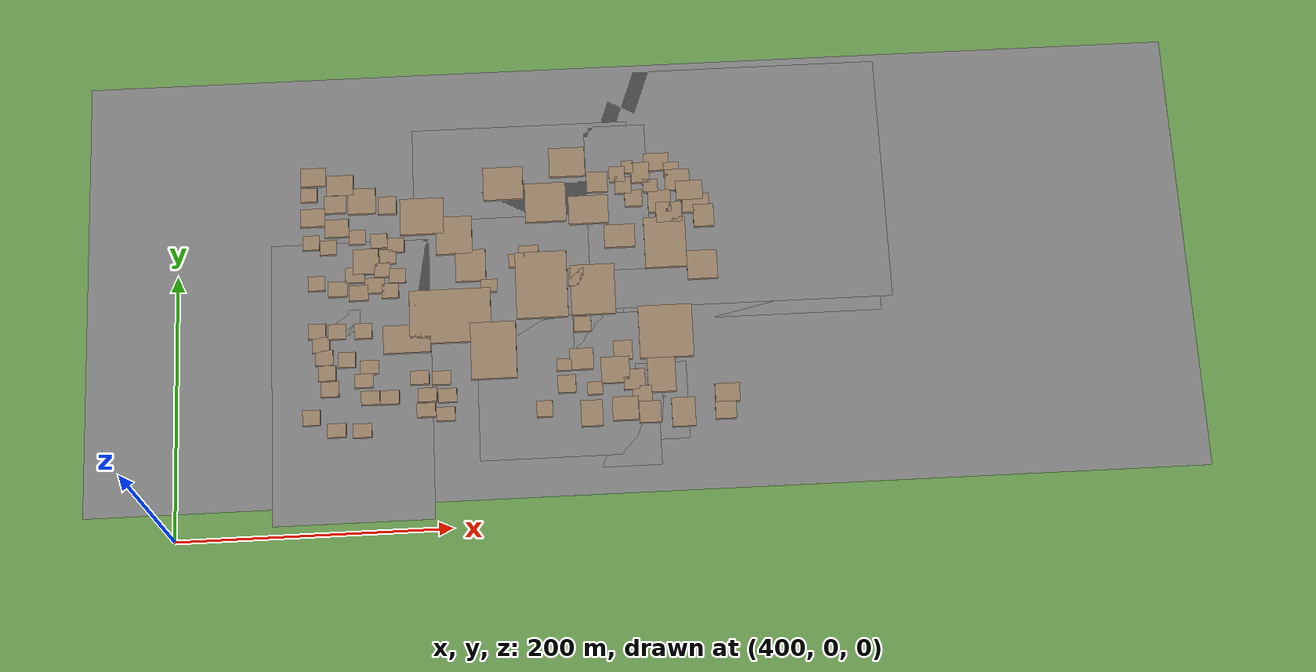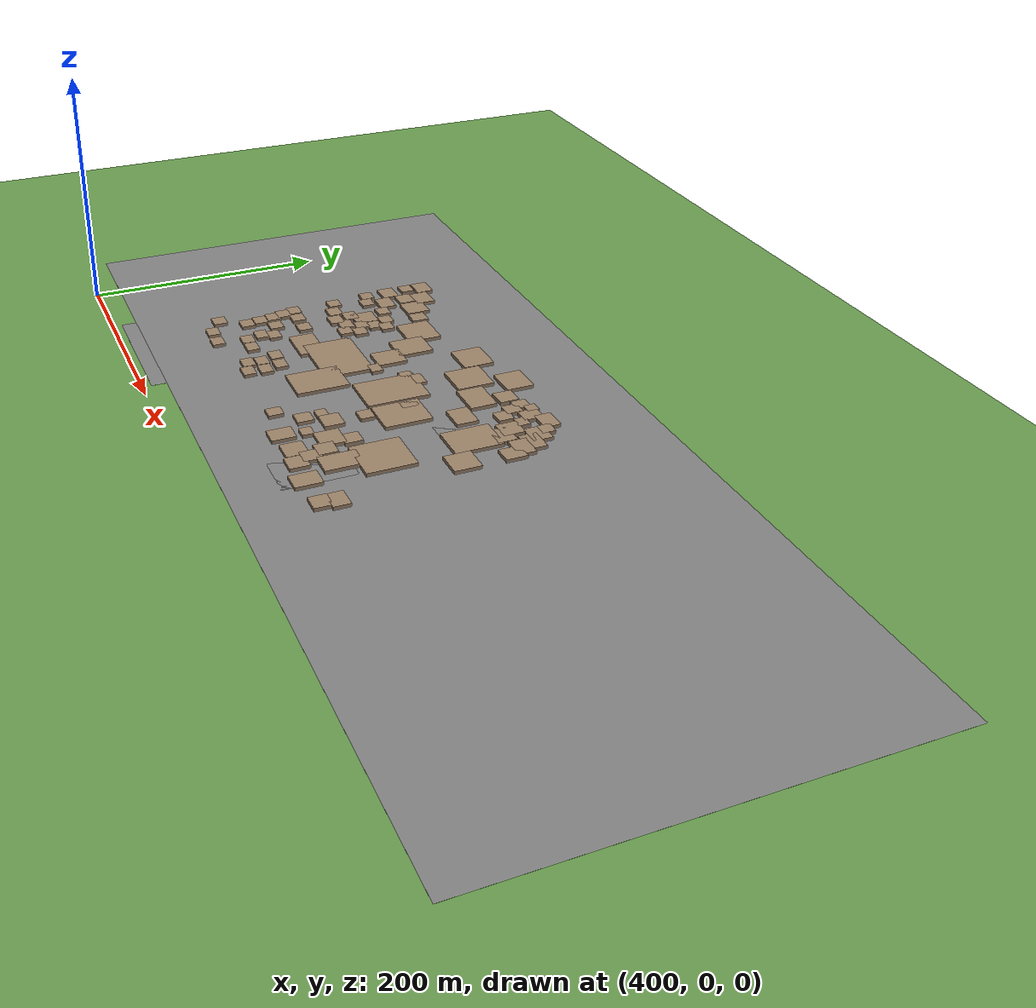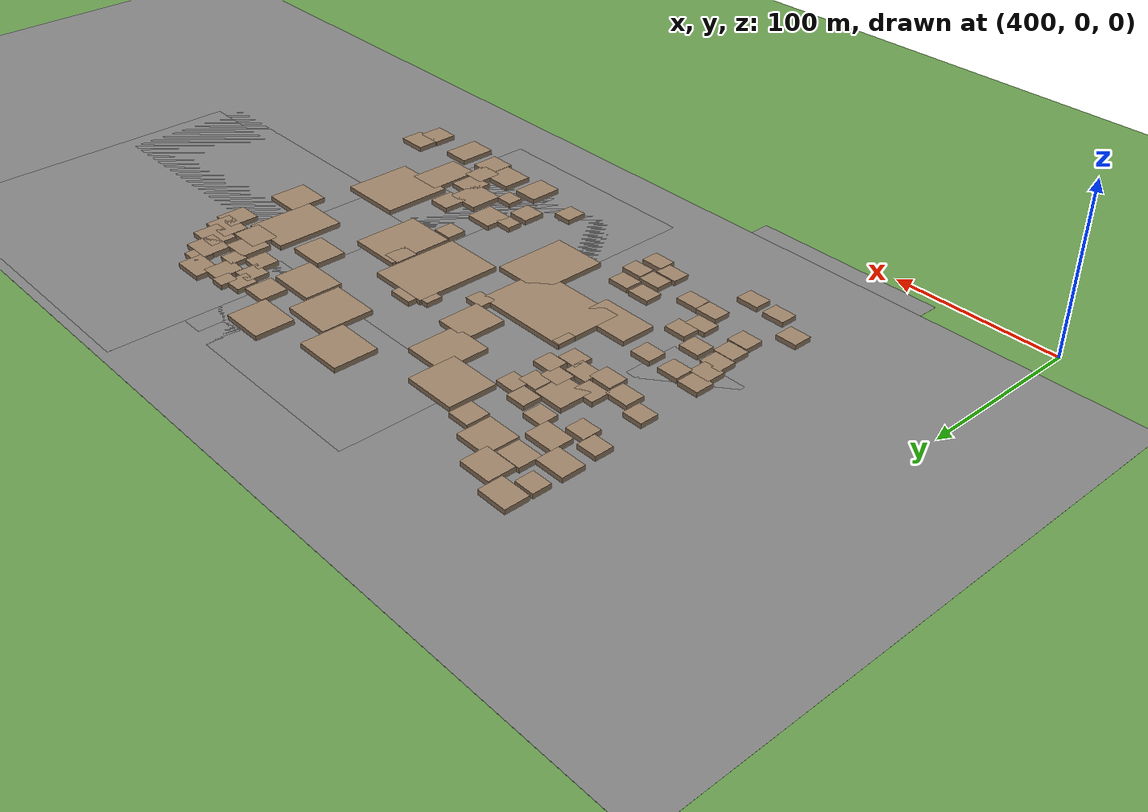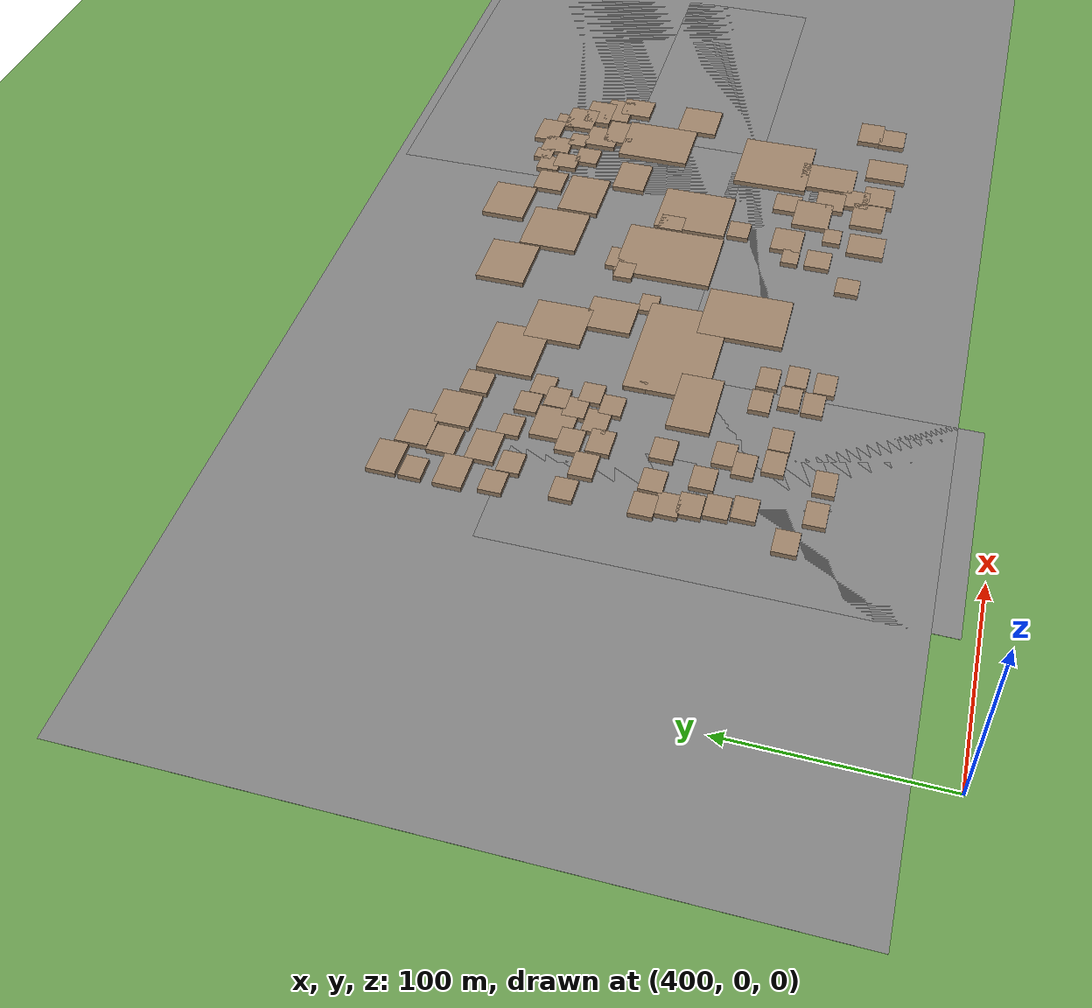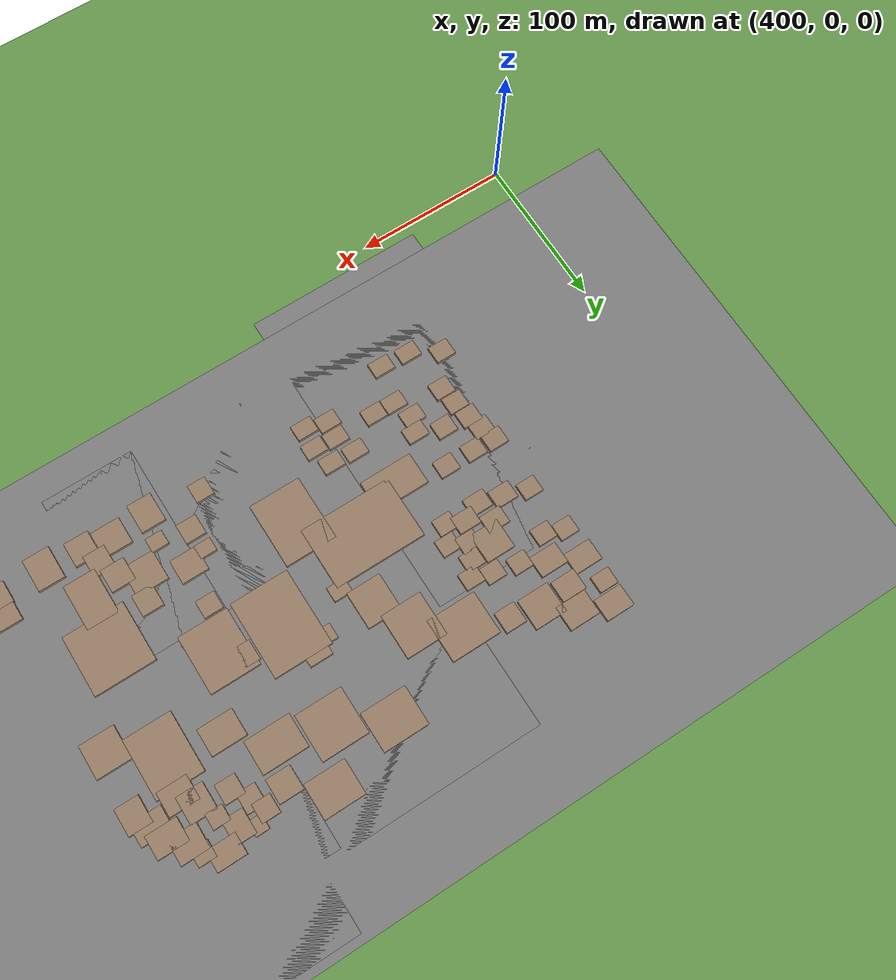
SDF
<sdf version="1.9">
 <world name="kimje_farmland">
  <model name="ground_plane">
   <static>true</static>
   <link name="link">
    <collision name="collision">
     <geometry><plane><normal>0 0 1</normal><size>2000 2000</size></plane></geometry>
    </collision>
    <visual name="visual">
     <geometry><plane><normal>0 0 1</normal><size>2000 2000</size></plane></geometry>
     <material><ambient>0.4 0.6 0.3 1</ambient><diffuse>0.4 0.6 0.3 1</diffuse></material>
    </visual>
   </link>
  </model>
  <model name="osm_21">
   <static>true</static>
   <pose>845.04 188.35 0.040 0 0 0</pose>
   <link name="link">
    <collision name="collision"><geometry><box><size>151.77 76.82 0.080</size></box></geometry></collision>
    <visual name="visual">
     <geometry><box><size>151.77 76.82 0.080</size></box></geometry>
     <material><ambient>0.5 0.5 0.5 1</ambient><diffuse>0.5 0.5 0.5 1</diffuse></material>
    </visual>
   </link>
  </model>
  <model name="osm_22">
   <static>true</static>
   <pose>657.44 272.59 0.040 0 0 0</pose>
   <link name="link">
    <collision name="collision"><geometry><box><size>162.70 73.04 0.080</size></box></geometry></collision>
    <visual name="visual">
     <geometry><box><size>162.70 73.04 0.080</size></box></geometry>
     <material><ambient>0.5 0.5 0.5 1</ambient><diffuse>0.5 0.5 0.5 1</diffuse></material>
    </visual>
   </link>
  </model>
  <model name="osm_28">
   <static>true</static>
   <pose>825.12 254.89 0.040 0 0 0</pose>
   <link name="link">
    <collision name="collision"><geometry><box><size>210.04 188.95 0.080</size></box></geometry></collision>
    <visual name="visual">
     <geometry><box><size>210.04 188.95 0.080</size></box></geometry>
     <material><ambient>0.5 0.5 0.5 1</ambient><diffuse>0.5 0.5 0.5 1</diffuse></material>
    </visual>
   </link>
  </model>
  <model name="osm_29">
   <static>true</static>
   <pose>755.11 88.00 0.040 0 0 0</pose>
   <link name="link">
    <collision name="collision"><geometry><box><size>37.70 58.23 0.080</size></box></geometry></collision>
    <visual name="visual">
     <geometry><box><size>37.70 58.23 0.080</size></box></geometry>
     <material><ambient>0.5 0.5 0.5 1</ambient><diffuse>0.5 0.5 0.5 1</diffuse></material>
    </visual>
   </link>
  </model>
  <model name="osm_33">
   <static>true</static>
   <pose>722.31 101.72 0.040 0 0 0</pose>
   <link name="link">
    <collision name="collision"><geometry><box><size>60.43 123.33 0.080</size></box></geometry></collision>
    <visual name="visual">
     <geometry><box><size>60.43 123.33 0.080</size></box></geometry>
     <material><ambient>0.5 0.5 0.5 1</ambient><diffuse>0.5 0.5 0.5 1</diffuse></material>
    </visual>
   </link>
  </model>
  <model name="osm_34">
   <static>true</static>
   <pose>688.09 103.04 0.040 0 0 0</pose>
   <link name="link">
    <collision name="collision"><geometry><box><size>135.03 108.14 0.080</size></box></geometry></collision>
    <visual name="visual">
     <geometry><box><size>135.03 108.14 0.080</size></box></geometry>
     <material><ambient>0.5 0.5 0.5 1</ambient><diffuse>0.5 0.5 0.5 1</diffuse></material>
    </visual>
   </link>
  </model>
  <model name="osm_35">
   <static>true</static>
   <pose>528.19 114.59 0.040 0 0 0</pose>
   <link name="link">
    <collision name="collision"><geometry><box><size>117.77 214.03 0.080</size></box></geometry></collision>
    <visual name="visual">
     <geometry><box><size>117.77 214.03 0.080</size></box></geometry>
     <material><ambient>0.5 0.5 0.5 1</ambient><diffuse>0.5 0.5 0.5 1</diffuse></material>
    </visual>
   </link>
  </model>
  <model name="osm_39">
   <static>true</static>
   <pose>510.89 151.69 0.040 0 0 0</pose>
   <link name="link">
    <collision name="collision"><geometry><box><size>47.58 33.84 0.080</size></box></geometry></collision>
    <visual name="visual">
     <geometry><box><size>47.58 33.84 0.080</size></box></geometry>
     <material><ambient>0.5 0.5 0.5 1</ambient><diffuse>0.5 0.5 0.5 1</diffuse></material>
    </visual>
   </link>
  </model>
  <model name="osm_94">
   <static>true</static>
   <pose>742.05 187.37 0.040 0 0 0</pose>
   <link name="link">
    <collision name="collision"><geometry><box><size>818.71 334.66 0.080</size></box></geometry></collision>
    <visual name="visual">
     <geometry><box><size>818.71 334.66 0.080</size></box></geometry>
     <material><ambient>0.5 0.5 0.5 1</ambient><diffuse>0.5 0.5 0.5 1</diffuse></material>
    </visual>
   </link>
  </model>
  <model name="osm_111">
   <static>true</static>
   <pose>729.28 248.20 0.040 0 0 0</pose>
   <link name="link">
    <collision name="collision"><geometry><box><size>46.05 115.32 0.080</size></box></geometry></collision>
    <visual name="visual">
     <geometry><box><size>46.05 115.32 0.080</size></box></geometry>
     <material><ambient>0.5 0.5 0.5 1</ambient><diffuse>0.5 0.5 0.5 1</diffuse></material>
    </visual>
   </link>
  </model>
  <model name="osm_1144">
   <static>true</static>
   <pose>501.09 274.22 1.500 0 0 0</pose>
   <link name="link">
    <collision name="collision"><geometry><box><size>18.59 14.35 3.000</size></box></geometry></collision>
    <visual name="visual">
     <geometry><box><size>18.59 14.35 3.000</size></box></geometry>
     <material><ambient>0.6 0.5 0.4 1</ambient><diffuse>0.6 0.5 0.4 1</diffuse></material>
    </visual>
   </link>
  </model>
  <model name="osm_1146">
   <static>true</static>
   <pose>497.92 260.11 1.500 0 0 0</pose>
   <link name="link">
    <collision name="collision"><geometry><box><size>12.29 10.95 3.000</size></box></geometry></collision>
    <visual name="visual">
     <geometry><box><size>12.29 10.95 3.000</size></box></geometry>
     <material><ambient>0.6 0.5 0.4 1</ambient><diffuse>0.6 0.5 0.4 1</diffuse></material>
    </visual>
   </link>
  </model>
  <model name="osm_1147">
   <static>true</static>
   <pose>521.26 266.69 1.500 0 0 0</pose>
   <link name="link">
    <collision name="collision"><geometry><box><size>20.10 15.99 3.000</size></box></geometry></collision>
    <visual name="visual">
     <geometry><box><size>20.10 15.99 3.000</size></box></geometry>
     <material><ambient>0.6 0.5 0.4 1</ambient><diffuse>0.6 0.5 0.4 1</diffuse></material>
    </visual>
   </link>
  </model>
  <model name="osm_1148">
   <static>true</static>
   <pose>517.43 251.61 1.500 0 0 0</pose>
   <link name="link">
    <collision name="collision"><geometry><box><size>16.06 13.67 3.000</size></box></geometry></collision>
    <visual name="visual">
     <geometry><box><size>16.06 13.67 3.000</size></box></geometry>
     <material><ambient>0.6 0.5 0.4 1</ambient><diffuse>0.6 0.5 0.4 1</diffuse></material>
    </visual>
   </link>
  </model>
  <model name="osm_1149">
   <static>true</static>
   <pose>537.35 253.39 1.500 0 0 0</pose>
   <link name="link">
    <collision name="collision"><geometry><box><size>20.86 20.08 3.000</size></box></geometry></collision>
    <visual name="visual">
     <geometry><box><size>20.86 20.08 3.000</size></box></geometry>
     <material><ambient>0.6 0.5 0.4 1</ambient><diffuse>0.6 0.5 0.4 1</diffuse></material>
    </visual>
   </link>
  </model>
  <model name="osm_1151">
   <static>true</static>
   <pose>556.51 249.13 1.500 0 0 0</pose>
   <link name="link">
    <collision name="collision"><geometry><box><size>13.67 13.69 3.000</size></box></geometry></collision>
    <visual name="visual">
     <geometry><box><size>13.67 13.69 3.000</size></box></geometry>
     <material><ambient>0.6 0.5 0.4 1</ambient><diffuse>0.6 0.5 0.4 1</diffuse></material>
    </visual>
   </link>
  </model>
  <model name="osm_1156">
   <static>true</static>
   <pose>790.09 190.89 1.500 0 0 0</pose>
   <link name="link">
    <collision name="collision"><geometry><box><size>22.40 22.16 3.000</size></box></geometry></collision>
    <visual name="visual">
     <geometry><box><size>22.40 22.16 3.000</size></box></geometry>
     <material><ambient>0.6 0.5 0.4 1</ambient><diffuse>0.6 0.5 0.4 1</diffuse></material>
    </visual>
   </link>
  </model>
  <model name="osm_1194">
   <static>true</static>
   <pose>556.09 99.58 1.500 0 0 0</pose>
   <link name="link">
    <collision name="collision"><geometry><box><size>13.76 10.42 3.000</size></box></geometry></collision>
    <visual name="visual">
     <geometry><box><size>13.76 10.42 3.000</size></box></geometry>
     <material><ambient>0.6 0.5 0.4 1</ambient><diffuse>0.6 0.5 0.4 1</diffuse></material>
    </visual>
   </link>
  </model>
  <model name="osm_1195">
   <static>true</static>
   <pose>541.84 99.84 1.500 0 0 0</pose>
   <link name="link">
    <collision name="collision"><geometry><box><size>13.76 10.42 3.000</size></box></geometry></collision>
    <visual name="visual">
     <geometry><box><size>13.76 10.42 3.000</size></box></geometry>
     <material><ambient>0.6 0.5 0.4 1</ambient><diffuse>0.6 0.5 0.4 1</diffuse></material>
    </visual>
   </link>
  </model>
  <model name="osm_1196">
   <static>true</static>
   <pose>582.31 88.64 1.500 0 0 0</pose>
   <link name="link">
    <collision name="collision"><geometry><box><size>13.76 10.42 3.000</size></box></geometry></collision>
    <visual name="visual">
     <geometry><box><size>13.76 10.42 3.000</size></box></geometry>
     <material><ambient>0.6 0.5 0.4 1</ambient><diffuse>0.6 0.5 0.4 1</diffuse></material>
    </visual>
   </link>
  </model>
  <model name="osm_1198">
   <static>true</static>
   <pose>535.48 75.40 1.500 0 0 0</pose>
   <link name="link">
    <collision name="collision"><geometry><box><size>13.76 10.42 3.000</size></box></geometry></collision>
    <visual name="visual">
     <geometry><box><size>13.76 10.42 3.000</size></box></geometry>
     <material><ambient>0.6 0.5 0.4 1</ambient><diffuse>0.6 0.5 0.4 1</diffuse></material>
    </visual>
   </link>
  </model>
  <model name="osm_1199">
   <static>true</static>
   <pose>516.90 76.42 1.500 0 0 0</pose>
   <link name="link">
    <collision name="collision"><geometry><box><size>13.76 10.42 3.000</size></box></geometry></collision>
    <visual name="visual">
     <geometry><box><size>13.76 10.42 3.000</size></box></geometry>
     <material><ambient>0.6 0.5 0.4 1</ambient><diffuse>0.6 0.5 0.4 1</diffuse></material>
    </visual>
   </link>
  </model>
  <model name="osm_1205">
   <static>true</static>
   <pose>596.57 85.08 1.500 0 0 0</pose>
   <link name="link">
    <collision name="collision"><geometry><box><size>13.75 10.42 3.000</size></box></geometry></collision>
    <visual name="visual">
     <geometry><box><size>13.75 10.42 3.000</size></box></geometry>
     <material><ambient>0.6 0.5 0.4 1</ambient><diffuse>0.6 0.5 0.4 1</diffuse></material>
    </visual>
   </link>
  </model>
  <model name="osm_1206">
   <static>true</static>
   <pose>583.58 100.09 1.500 0 0 0</pose>
   <link name="link">
    <collision name="collision"><geometry><box><size>13.75 10.42 3.000</size></box></geometry></collision>
    <visual name="visual">
     <geometry><box><size>13.75 10.42 3.000</size></box></geometry>
     <material><ambient>0.6 0.5 0.4 1</ambient><diffuse>0.6 0.5 0.4 1</diffuse></material>
    </visual>
   </link>
  </model>
  <model name="osm_1207">
   <static>true</static>
   <pose>594.02 112.56 1.500 0 0 0</pose>
   <link name="link">
    <collision name="collision"><geometry><box><size>13.75 10.42 3.000</size></box></geometry></collision>
    <visual name="visual">
     <geometry><box><size>13.75 10.42 3.000</size></box></geometry>
     <material><ambient>0.6 0.5 0.4 1</ambient><diffuse>0.6 0.5 0.4 1</diffuse></material>
    </visual>
   </link>
  </model>
  <model name="osm_1208">
   <static>true</static>
   <pose>598.09 99.07 1.500 0 0 0</pose>
   <link name="link">
    <collision name="collision"><geometry><box><size>13.75 10.42 3.000</size></box></geometry></collision>
    <visual name="visual">
     <geometry><box><size>13.75 10.42 3.000</size></box></geometry>
     <material><ambient>0.6 0.5 0.4 1</ambient><diffuse>0.6 0.5 0.4 1</diffuse></material>
    </visual>
   </link>
  </model>
  <model name="osm_1209">
   <static>true</static>
   <pose>537.00 113.07 1.500 0 0 0</pose>
   <link name="link">
    <collision name="collision"><geometry><box><size>13.76 10.42 3.000</size></box></geometry></collision>
    <visual name="visual">
     <geometry><box><size>13.76 10.42 3.000</size></box></geometry>
     <material><ambient>0.6 0.5 0.4 1</ambient><diffuse>0.6 0.5 0.4 1</diffuse></material>
    </visual>
   </link>
  </model>
  <model name="osm_1222">
   <static>true</static>
   <pose>541.25 123.23 1.500 0 0 0</pose>
   <link name="link">
    <collision name="collision"><geometry><box><size>13.75 10.42 3.000</size></box></geometry></collision>
    <visual name="visual">
     <geometry><box><size>13.75 10.42 3.000</size></box></geometry>
     <material><ambient>0.6 0.5 0.4 1</ambient><diffuse>0.6 0.5 0.4 1</diffuse></material>
    </visual>
   </link>
  </model>
  <model name="osm_1223">
   <static>true</static>
   <pose>569.18 143.60 1.500 0 0 0</pose>
   <link name="link">
    <collision name="collision"><geometry><box><size>34.82 21.22 3.000</size></box></geometry></collision>
    <visual name="visual">
     <geometry><box><size>34.82 21.22 3.000</size></box></geometry>
     <material><ambient>0.6 0.5 0.4 1</ambient><diffuse>0.6 0.5 0.4 1</diffuse></material>
    </visual>
   </link>
  </model>
  <model name="osm_1224">
   <static>true</static>
   <pose>578.15 113.51 1.500 0 0 0</pose>
   <link name="link">
    <collision name="collision"><geometry><box><size>13.76 10.42 3.000</size></box></geometry></collision>
    <visual name="visual">
     <geometry><box><size>13.76 10.42 3.000</size></box></geometry>
     <material><ambient>0.6 0.5 0.4 1</ambient><diffuse>0.6 0.5 0.4 1</diffuse></material>
    </visual>
   </link>
  </model>
  <model name="osm_1225">
   <static>true</static>
   <pose>498.47 86.73 1.500 0 0 0</pose>
   <link name="link">
    <collision name="collision"><geometry><box><size>13.01 11.50 3.000</size></box></geometry></collision>
    <visual name="visual">
     <geometry><box><size>13.01 11.50 3.000</size></box></geometry>
     <material><ambient>0.6 0.5 0.4 1</ambient><diffuse>0.6 0.5 0.4 1</diffuse></material>
    </visual>
   </link>
  </model>
  <model name="osm_1231">
   <static>true</static>
   <pose>512.17 107.71 1.500 0 0 0</pose>
   <link name="link">
    <collision name="collision"><geometry><box><size>13.00 11.50 3.000</size></box></geometry></collision>
    <visual name="visual">
     <geometry><box><size>13.00 11.50 3.000</size></box></geometry>
     <material><ambient>0.6 0.5 0.4 1</ambient><diffuse>0.6 0.5 0.4 1</diffuse></material>
    </visual>
   </link>
  </model>
  <model name="osm_1232">
   <static>true</static>
   <pose>510.19 119.94 1.500 0 0 0</pose>
   <link name="link">
    <collision name="collision"><geometry><box><size>13.01 11.50 3.000</size></box></geometry></collision>
    <visual name="visual">
     <geometry><box><size>13.01 11.50 3.000</size></box></geometry>
     <material><ambient>0.6 0.5 0.4 1</ambient><diffuse>0.6 0.5 0.4 1</diffuse></material>
    </visual>
   </link>
  </model>
  <model name="osm_1233">
   <static>true</static>
   <pose>524.77 129.66 1.500 0 0 0</pose>
   <link name="link">
    <collision name="collision"><geometry><box><size>13.01 11.50 3.000</size></box></geometry></collision>
    <visual name="visual">
     <geometry><box><size>13.01 11.50 3.000</size></box></geometry>
     <material><ambient>0.6 0.5 0.4 1</ambient><diffuse>0.6 0.5 0.4 1</diffuse></material>
    </visual>
   </link>
  </model>
  <model name="osm_1234">
   <static>true</static>
   <pose>508.21 131.82 1.500 0 0 0</pose>
   <link name="link">
    <collision name="collision"><geometry><box><size>13.01 11.50 3.000</size></box></geometry></collision>
    <visual name="visual">
     <geometry><box><size>13.01 11.50 3.000</size></box></geometry>
     <material><ambient>0.6 0.5 0.4 1</ambient><diffuse>0.6 0.5 0.4 1</diffuse></material>
    </visual>
   </link>
  </model>
  <model name="osm_1235">
   <static>true</static>
   <pose>505.87 141.90 1.500 0 0 0</pose>
   <link name="link">
    <collision name="collision"><geometry><box><size>13.00 11.50 3.000</size></box></geometry></collision>
    <visual name="visual">
     <geometry><box><size>13.00 11.50 3.000</size></box></geometry>
     <material><ambient>0.6 0.5 0.4 1</ambient><diffuse>0.6 0.5 0.4 1</diffuse></material>
    </visual>
   </link>
  </model>
  <model name="osm_1236">
   <static>true</static>
   <pose>503.17 152.52 1.500 0 0 0</pose>
   <link name="link">
    <collision name="collision"><geometry><box><size>13.00 11.50 3.000</size></box></geometry></collision>
    <visual name="visual">
     <geometry><box><size>13.00 11.50 3.000</size></box></geometry>
     <material><ambient>0.6 0.5 0.4 1</ambient><diffuse>0.6 0.5 0.4 1</diffuse></material>
    </visual>
   </link>
  </model>
  <model name="osm_1237">
   <static>true</static>
   <pose>517.75 151.62 1.500 0 0 0</pose>
   <link name="link">
    <collision name="collision"><geometry><box><size>13.00 11.50 3.000</size></box></geometry></collision>
    <visual name="visual">
     <geometry><box><size>13.00 11.50 3.000</size></box></geometry>
     <material><ambient>0.6 0.5 0.4 1</ambient><diffuse>0.6 0.5 0.4 1</diffuse></material>
    </visual>
   </link>
  </model>
  <model name="osm_1245">
   <static>true</static>
   <pose>537.01 151.26 1.500 0 0 0</pose>
   <link name="link">
    <collision name="collision"><geometry><box><size>13.00 11.50 3.000</size></box></geometry></collision>
    <visual name="visual">
     <geometry><box><size>13.00 11.50 3.000</size></box></geometry>
     <material><ambient>0.6 0.5 0.4 1</ambient><diffuse>0.6 0.5 0.4 1</diffuse></material>
    </visual>
   </link>
  </model>
  <model name="osm_1246">
   <static>true</static>
   <pose>518.66 184.68 1.500 0 0 0</pose>
   <link name="link">
    <collision name="collision"><geometry><box><size>14.31 11.72 3.000</size></box></geometry></collision>
    <visual name="visual">
     <geometry><box><size>14.31 11.72 3.000</size></box></geometry>
     <material><ambient>0.6 0.5 0.4 1</ambient><diffuse>0.6 0.5 0.4 1</diffuse></material>
    </visual>
   </link>
  </model>
  <model name="osm_1247">
   <static>true</static>
   <pose>534.18 180.96 1.500 0 0 0</pose>
   <link name="link">
    <collision name="collision"><geometry><box><size>14.32 11.73 3.000</size></box></geometry></collision>
    <visual name="visual">
     <geometry><box><size>14.32 11.73 3.000</size></box></geometry>
     <material><ambient>0.6 0.5 0.4 1</ambient><diffuse>0.6 0.5 0.4 1</diffuse></material>
    </visual>
   </link>
  </model>
  <model name="osm_1248">
   <static>true</static>
   <pose>531.48 195.00 1.500 0 0 0</pose>
   <link name="link">
    <collision name="collision"><geometry><box><size>14.32 11.72 3.000</size></box></geometry></collision>
    <visual name="visual">
     <geometry><box><size>14.32 11.72 3.000</size></box></geometry>
     <material><ambient>0.6 0.5 0.4 1</ambient><diffuse>0.6 0.5 0.4 1</diffuse></material>
    </visual>
   </link>
  </model>
  <model name="osm_1249">
   <static>true</static>
   <pose>546.06 186.18 1.500 0 0 0</pose>
   <link name="link">
    <collision name="collision"><geometry><box><size>14.32 11.73 3.000</size></box></geometry></collision>
    <visual name="visual">
     <geometry><box><size>14.32 11.73 3.000</size></box></geometry>
     <material><ambient>0.6 0.5 0.4 1</ambient><diffuse>0.6 0.5 0.4 1</diffuse></material>
    </visual>
   </link>
  </model>
  <model name="osm_1250">
   <static>true</static>
   <pose>551.95 198.19 1.500 0 0 0</pose>
   <link name="link">
    <collision name="collision"><geometry><box><size>12.39 11.12 3.000</size></box></geometry></collision>
    <visual name="visual">
     <geometry><box><size>12.39 11.12 3.000</size></box></geometry>
     <material><ambient>0.6 0.5 0.4 1</ambient><diffuse>0.6 0.5 0.4 1</diffuse></material>
    </visual>
   </link>
  </model>
  <model name="osm_1251">
   <static>true</static>
   <pose>562.98 193.13 1.500 0 0 0</pose>
   <link name="link">
    <collision name="collision"><geometry><box><size>12.39 11.12 3.000</size></box></geometry></collision>
    <visual name="visual">
     <geometry><box><size>12.39 11.12 3.000</size></box></geometry>
     <material><ambient>0.6 0.5 0.4 1</ambient><diffuse>0.6 0.5 0.4 1</diffuse></material>
    </visual>
   </link>
  </model>
  <model name="osm_1252">
   <static>true</static>
   <pose>557.58 181.62 1.500 0 0 0</pose>
   <link name="link">
    <collision name="collision"><geometry><box><size>12.39 11.13 3.000</size></box></geometry></collision>
    <visual name="visual">
     <geometry><box><size>12.39 11.13 3.000</size></box></geometry>
     <material><ambient>0.6 0.5 0.4 1</ambient><diffuse>0.6 0.5 0.4 1</diffuse></material>
    </visual>
   </link>
  </model>
  <model name="osm_1253">
   <static>true</static>
   <pose>556.14 208.43 1.500 0 0 0</pose>
   <link name="link">
    <collision name="collision"><geometry><box><size>12.38 11.13 3.000</size></box></geometry></collision>
    <visual name="visual">
     <geometry><box><size>12.38 11.13 3.000</size></box></geometry>
     <material><ambient>0.6 0.5 0.4 1</ambient><diffuse>0.6 0.5 0.4 1</diffuse></material>
    </visual>
   </link>
  </model>
  <model name="osm_1254">
   <static>true</static>
   <pose>562.44 217.25 1.500 0 0 0</pose>
   <link name="link">
    <collision name="collision"><geometry><box><size>12.39 11.13 3.000</size></box></geometry></collision>
    <visual name="visual">
     <geometry><box><size>12.39 11.13 3.000</size></box></geometry>
     <material><ambient>0.6 0.5 0.4 1</ambient><diffuse>0.6 0.5 0.4 1</diffuse></material>
    </visual>
   </link>
  </model>
  <model name="osm_1255">
   <static>true</static>
   <pose>511.87 217.61 1.500 0 0 0</pose>
   <link name="link">
    <collision name="collision"><geometry><box><size>12.39 11.12 3.000</size></box></geometry></collision>
    <visual name="visual">
     <geometry><box><size>12.39 11.12 3.000</size></box></geometry>
     <material><ambient>0.6 0.5 0.4 1</ambient><diffuse>0.6 0.5 0.4 1</diffuse></material>
    </visual>
   </link>
  </model>
  <model name="osm_1256">
   <static>true</static>
   <pose>499.09 221.93 1.500 0 0 0</pose>
   <link name="link">
    <collision name="collision"><geometry><box><size>12.39 11.12 3.000</size></box></geometry></collision>
    <visual name="visual">
     <geometry><box><size>12.39 11.12 3.000</size></box></geometry>
     <material><ambient>0.6 0.5 0.4 1</ambient><diffuse>0.6 0.5 0.4 1</diffuse></material>
    </visual>
   </link>
  </model>
  <model name="osm_1257">
   <static>true</static>
   <pose>502.87 189.72 1.500 0 0 0</pose>
   <link name="link">
    <collision name="collision"><geometry><box><size>12.38 11.12 3.000</size></box></geometry></collision>
    <visual name="visual">
     <geometry><box><size>12.38 11.12 3.000</size></box></geometry>
     <material><ambient>0.6 0.5 0.4 1</ambient><diffuse>0.6 0.5 0.4 1</diffuse></material>
    </visual>
   </link>
  </model>
  <model name="osm_1259">
   <static>true</static>
   <pose>533.64 224.81 1.500 0 0 0</pose>
   <link name="link">
    <collision name="collision"><geometry><box><size>12.38 11.13 3.000</size></box></geometry></collision>
    <visual name="visual">
     <geometry><box><size>12.38 11.13 3.000</size></box></geometry>
     <material><ambient>0.6 0.5 0.4 1</ambient><diffuse>0.6 0.5 0.4 1</diffuse></material>
    </visual>
   </link>
  </model>
  <model name="osm_1260">
   <static>true</static>
   <pose>549.84 221.21 1.500 0 0 0</pose>
   <link name="link">
    <collision name="collision"><geometry><box><size>12.38 11.13 3.000</size></box></geometry></collision>
    <visual name="visual">
     <geometry><box><size>12.38 11.13 3.000</size></box></geometry>
     <material><ambient>0.6 0.5 0.4 1</ambient><diffuse>0.6 0.5 0.4 1</diffuse></material>
    </visual>
   </link>
  </model>
  <model name="osm_1261">
   <static>true</static>
   <pose>500.43 241.82 1.500 0 0 0</pose>
   <link name="link">
    <collision name="collision"><geometry><box><size>18.04 13.91 3.000</size></box></geometry></collision>
    <visual name="visual">
     <geometry><box><size>18.04 13.91 3.000</size></box></geometry>
     <material><ambient>0.6 0.5 0.4 1</ambient><diffuse>0.6 0.5 0.4 1</diffuse></material>
    </visual>
   </link>
  </model>
  <model name="osm_1262">
   <static>true</static>
   <pose>518.42 232.65 1.500 0 0 0</pose>
   <link name="link">
    <collision name="collision"><geometry><box><size>18.05 13.90 3.000</size></box></geometry></collision>
    <visual name="visual">
     <geometry><box><size>18.05 13.90 3.000</size></box></geometry>
     <material><ambient>0.6 0.5 0.4 1</ambient><diffuse>0.6 0.5 0.4 1</diffuse></material>
    </visual>
   </link>
  </model>
  <model name="osm_1503">
   <static>true</static>
   <pose>759.92 274.13 1.500 0 0 0</pose>
   <link name="link">
    <collision name="collision"><geometry><box><size>18.86 13.77 3.000</size></box></geometry></collision>
    <visual name="visual">
     <geometry><box><size>18.86 13.77 3.000</size></box></geometry>
     <material><ambient>0.6 0.5 0.4 1</ambient><diffuse>0.6 0.5 0.4 1</diffuse></material>
    </visual>
   </link>
  </model>
  <model name="osm_1504">
   <static>true</static>
   <pose>770.90 267.68 1.500 0 0 0</pose>
   <link name="link">
    <collision name="collision"><geometry><box><size>11.45 11.08 3.000</size></box></geometry></collision>
    <visual name="visual">
     <geometry><box><size>11.45 11.08 3.000</size></box></geometry>
     <material><ambient>0.6 0.5 0.4 1</ambient><diffuse>0.6 0.5 0.4 1</diffuse></material>
    </visual>
   </link>
  </model>
  <model name="osm_1507">
   <static>true</static>
   <pose>729.83 265.65 1.500 0 0 0</pose>
   <link name="link">
    <collision name="collision"><geometry><box><size>11.84 12.32 3.000</size></box></geometry></collision>
    <visual name="visual">
     <geometry><box><size>11.84 12.32 3.000</size></box></geometry>
     <material><ambient>0.6 0.5 0.4 1</ambient><diffuse>0.6 0.5 0.4 1</diffuse></material>
    </visual>
   </link>
  </model>
  <model name="osm_1508">
   <static>true</static>
   <pose>734.08 256.57 1.500 0 0 0</pose>
   <link name="link">
    <collision name="collision"><geometry><box><size>12.28 13.33 3.000</size></box></geometry></collision>
    <visual name="visual">
     <geometry><box><size>12.28 13.33 3.000</size></box></geometry>
     <material><ambient>0.6 0.5 0.4 1</ambient><diffuse>0.6 0.5 0.4 1</diffuse></material>
    </visual>
   </link>
  </model>
  <model name="osm_1509">
   <static>true</static>
   <pose>737.80 271.06 1.500 0 0 0</pose>
   <link name="link">
    <collision name="collision"><geometry><box><size>8.76 9.89 3.000</size></box></geometry></collision>
    <visual name="visual">
     <geometry><box><size>8.76 9.89 3.000</size></box></geometry>
     <material><ambient>0.6 0.5 0.4 1</ambient><diffuse>0.6 0.5 0.4 1</diffuse></material>
    </visual>
   </link>
  </model>
  <model name="osm_1510">
   <static>true</static>
   <pose>747.39 266.17 1.500 0 0 0</pose>
   <link name="link">
    <collision name="collision"><geometry><box><size>13.67 16.16 3.000</size></box></geometry></collision>
    <visual name="visual">
     <geometry><box><size>13.67 16.16 3.000</size></box></geometry>
     <material><ambient>0.6 0.5 0.4 1</ambient><diffuse>0.6 0.5 0.4 1</diffuse></material>
    </visual>
   </link>
  </model>
  <model name="osm_1511">
   <static>true</static>
   <pose>754.57 255.31 1.500 0 0 0</pose>
   <link name="link">
    <collision name="collision"><geometry><box><size>11.03 10.00 3.000</size></box></geometry></collision>
    <visual name="visual">
     <geometry><box><size>11.03 10.00 3.000</size></box></geometry>
     <material><ambient>0.6 0.5 0.4 1</ambient><diffuse>0.6 0.5 0.4 1</diffuse></material>
    </visual>
   </link>
  </model>
  <model name="osm_1512">
   <static>true</static>
   <pose>741.43 245.86 1.500 0 0 0</pose>
   <link name="link">
    <collision name="collision"><geometry><box><size>13.06 12.85 3.000</size></box></geometry></collision>
    <visual name="visual">
     <geometry><box><size>13.06 12.85 3.000</size></box></geometry>
     <material><ambient>0.6 0.5 0.4 1</ambient><diffuse>0.6 0.5 0.4 1</diffuse></material>
    </visual>
   </link>
  </model>
  <model name="osm_1513">
   <static>true</static>
   <pose>714.57 260.07 1.500 0 0 0</pose>
   <link name="link">
    <collision name="collision"><geometry><box><size>15.81 15.93 3.000</size></box></geometry></collision>
    <visual name="visual">
     <geometry><box><size>15.81 15.93 3.000</size></box></geometry>
     <material><ambient>0.6 0.5 0.4 1</ambient><diffuse>0.6 0.5 0.4 1</diffuse></material>
    </visual>
   </link>
  </model>
  <model name="osm_1514">
   <static>true</static>
   <pose>692.51 277.19 1.500 0 0 0</pose>
   <link name="link">
    <collision name="collision"><geometry><box><size>26.88 23.00 3.000</size></box></geometry></collision>
    <visual name="visual">
     <geometry><box><size>26.88 23.00 3.000</size></box></geometry>
     <material><ambient>0.6 0.5 0.4 1</ambient><diffuse>0.6 0.5 0.4 1</diffuse></material>
    </visual>
   </link>
  </model>
  <model name="osm_1515">
   <static>true</static>
   <pose>675.20 245.78 1.500 0 0 0</pose>
   <link name="link">
    <collision name="collision"><geometry><box><size>30.76 30.75 3.000</size></box></geometry></collision>
    <visual name="visual">
     <geometry><box><size>30.76 30.75 3.000</size></box></geometry>
     <material><ambient>0.6 0.5 0.4 1</ambient><diffuse>0.6 0.5 0.4 1</diffuse></material>
    </visual>
   </link>
  </model>
  <model name="osm_1516">
   <static>true</static>
   <pose>707.22 238.46 1.500 0 0 0</pose>
   <link name="link">
    <collision name="collision"><geometry><box><size>29.79 22.03 3.000</size></box></geometry></collision>
    <visual name="visual">
     <geometry><box><size>29.79 22.03 3.000</size></box></geometry>
     <material><ambient>0.6 0.5 0.4 1</ambient><diffuse>0.6 0.5 0.4 1</diffuse></material>
    </visual>
   </link>
  </model>
  <model name="osm_1517">
   <static>true</static>
   <pose>643.87 262.34 1.500 0 0 0</pose>
   <link name="link">
    <collision name="collision"><geometry><box><size>29.85 25.84 3.000</size></box></geometry></collision>
    <visual name="visual">
     <geometry><box><size>29.85 25.84 3.000</size></box></geometry>
     <material><ambient>0.6 0.5 0.4 1</ambient><diffuse>0.6 0.5 0.4 1</diffuse></material>
    </visual>
   </link>
  </model>
  <model name="osm_1519">
   <static>true</static>
   <pose>775.14 259.14 1.500 0 0 0</pose>
   <link name="link">
    <collision name="collision"><geometry><box><size>18.41 16.46 3.000</size></box></geometry></collision>
    <visual name="visual">
     <geometry><box><size>18.41 16.46 3.000</size></box></geometry>
     <material><ambient>0.6 0.5 0.4 1</ambient><diffuse>0.6 0.5 0.4 1</diffuse></material>
    </visual>
   </link>
  </model>
  <model name="osm_1520">
   <static>true</static>
   <pose>783.61 250.27 1.500 0 0 0</pose>
   <link name="link">
    <collision name="collision"><geometry><box><size>20.10 15.25 3.000</size></box></geometry></collision>
    <visual name="visual">
     <geometry><box><size>20.10 15.25 3.000</size></box></geometry>
     <material><ambient>0.6 0.5 0.4 1</ambient><diffuse>0.6 0.5 0.4 1</diffuse></material>
    </visual>
   </link>
  </model>
  <model name="osm_1521">
   <static>true</static>
   <pose>787.86 239.79 1.500 0 0 0</pose>
   <link name="link">
    <collision name="collision"><geometry><box><size>20.10 14.77 3.000</size></box></geometry></collision>
    <visual name="visual">
     <geometry><box><size>20.10 14.77 3.000</size></box></geometry>
     <material><ambient>0.6 0.5 0.4 1</ambient><diffuse>0.6 0.5 0.4 1</diffuse></material>
    </visual>
   </link>
  </model>
  <model name="osm_1522">
   <static>true</static>
   <pose>760.77 242.48 1.500 0 0 0</pose>
   <link name="link">
    <collision name="collision"><geometry><box><size>17.13 17.61 3.000</size></box></geometry></collision>
    <visual name="visual">
     <geometry><box><size>17.13 17.61 3.000</size></box></geometry>
     <material><ambient>0.6 0.5 0.4 1</ambient><diffuse>0.6 0.5 0.4 1</diffuse></material>
    </visual>
   </link>
  </model>
  <model name="osm_1547">
   <static>true</static>
   <pose>793.38 229.69 1.500 0 0 0</pose>
   <link name="link">
    <collision name="collision"><geometry><box><size>15.29 17.47 3.000</size></box></geometry></collision>
    <visual name="visual">
     <geometry><box><size>15.29 17.47 3.000</size></box></geometry>
     <material><ambient>0.6 0.5 0.4 1</ambient><diffuse>0.6 0.5 0.4 1</diffuse></material>
    </visual>
   </link>
  </model>
  <model name="osm_1548">
   <static>true</static>
   <pose>707.92 175.37 1.500 0 0 0</pose>
   <link name="link">
    <collision name="collision"><geometry><box><size>32.73 38.85 3.000</size></box></geometry></collision>
    <visual name="visual">
     <geometry><box><size>32.73 38.85 3.000</size></box></geometry>
     <material><ambient>0.6 0.5 0.4 1</ambient><diffuse>0.6 0.5 0.4 1</diffuse></material>
    </visual>
   </link>
  </model>
  <model name="osm_1549">
   <static>true</static>
   <pose>699.14 148.87 1.500 0 0 0</pose>
   <link name="link">
    <collision name="collision"><geometry><box><size>12.54 11.61 3.000</size></box></geometry></collision>
    <visual name="visual">
     <geometry><box><size>12.54 11.61 3.000</size></box></geometry>
     <material><ambient>0.6 0.5 0.4 1</ambient><diffuse>0.6 0.5 0.4 1</diffuse></material>
    </visual>
   </link>
  </model>
  <model name="osm_1550">
   <static>true</static>
   <pose>684.30 118.14 1.500 0 0 0</pose>
   <link name="link">
    <collision name="collision"><geometry><box><size>10.74 9.01 3.000</size></box></geometry></collision>
    <visual name="visual">
     <geometry><box><size>10.74 9.01 3.000</size></box></geometry>
     <material><ambient>0.6 0.5 0.4 1</ambient><diffuse>0.6 0.5 0.4 1</diffuse></material>
    </visual>
   </link>
  </model>
  <model name="osm_1551">
   <static>true</static>
   <pose>697.32 121.97 1.500 0 0 0</pose>
   <link name="link">
    <collision name="collision"><geometry><box><size>17.43 16.16 3.000</size></box></geometry></collision>
    <visual name="visual">
     <geometry><box><size>17.43 16.16 3.000</size></box></geometry>
     <material><ambient>0.6 0.5 0.4 1</ambient><diffuse>0.6 0.5 0.4 1</diffuse></material>
    </visual>
   </link>
  </model>
  <model name="osm_1552">
   <static>true</static>
   <pose>728.03 127.41 1.500 0 0 0</pose>
   <link name="link">
    <collision name="collision"><geometry><box><size>13.86 14.38 3.000</size></box></geometry></collision>
    <visual name="visual">
     <geometry><box><size>13.86 14.38 3.000</size></box></geometry>
     <material><ambient>0.6 0.5 0.4 1</ambient><diffuse>0.6 0.5 0.4 1</diffuse></material>
    </visual>
   </link>
  </model>
  <model name="osm_1553">
   <static>true</static>
   <pose>735.38 104.66 1.500 0 0 0</pose>
   <link name="link">
    <collision name="collision"><geometry><box><size>15.56 15.44 3.000</size></box></geometry></collision>
    <visual name="visual">
     <geometry><box><size>15.56 15.44 3.000</size></box></geometry>
     <material><ambient>0.6 0.5 0.4 1</ambient><diffuse>0.6 0.5 0.4 1</diffuse></material>
    </visual>
   </link>
  </model>
  <model name="osm_1554">
   <static>true</static>
   <pose>740.67 91.71 1.500 0 0 0</pose>
   <link name="link">
    <collision name="collision"><geometry><box><size>14.17 15.08 3.000</size></box></geometry></collision>
    <visual name="visual">
     <geometry><box><size>14.17 15.08 3.000</size></box></geometry>
     <material><ambient>0.6 0.5 0.4 1</ambient><diffuse>0.6 0.5 0.4 1</diffuse></material>
    </visual>
   </link>
  </model>
  <model name="osm_1555">
   <static>true</static>
   <pose>745.69 79.41 1.500 0 0 0</pose>
   <link name="link">
    <collision name="collision"><geometry><box><size>15.89 16.16 3.000</size></box></geometry></collision>
    <visual name="visual">
     <geometry><box><size>15.89 16.16 3.000</size></box></geometry>
     <material><ambient>0.6 0.5 0.4 1</ambient><diffuse>0.6 0.5 0.4 1</diffuse></material>
    </visual>
   </link>
  </model>
  <model name="osm_1557">
   <static>true</static>
   <pose>727.84 82.79 1.500 0 0 0</pose>
   <link name="link">
    <collision name="collision"><geometry><box><size>19.03 17.69 3.000</size></box></geometry></collision>
    <visual name="visual">
     <geometry><box><size>19.03 17.69 3.000</size></box></geometry>
     <material><ambient>0.6 0.5 0.4 1</ambient><diffuse>0.6 0.5 0.4 1</diffuse></material>
    </visual>
   </link>
  </model>
  <model name="osm_1567">
   <static>true</static>
   <pose>770.18 78.15 1.500 0 0 0</pose>
   <link name="link">
    <collision name="collision"><geometry><box><size>17.12 21.72 3.000</size></box></geometry></collision>
    <visual name="visual">
     <geometry><box><size>17.12 21.72 3.000</size></box></geometry>
     <material><ambient>0.6 0.5 0.4 1</ambient><diffuse>0.6 0.5 0.4 1</diffuse></material>
    </visual>
   </link>
  </model>
  <model name="osm_1568">
   <static>true</static>
   <pose>803.02 91.29 1.500 0 0 0</pose>
   <link name="link">
    <collision name="collision"><geometry><box><size>17.99 13.68 3.000</size></box></geometry></collision>
    <visual name="visual">
     <geometry><box><size>17.99 13.68 3.000</size></box></geometry>
     <material><ambient>0.6 0.5 0.4 1</ambient><diffuse>0.6 0.5 0.4 1</diffuse></material>
    </visual>
   </link>
  </model>
  <model name="osm_1569">
   <static>true</static>
   <pose>801.11 78.77 1.500 0 0 0</pose>
   <link name="link">
    <collision name="collision"><geometry><box><size>15.24 14.38 3.000</size></box></geometry></collision>
    <visual name="visual">
     <geometry><box><size>15.24 14.38 3.000</size></box></geometry>
     <material><ambient>0.6 0.5 0.4 1</ambient><diffuse>0.6 0.5 0.4 1</diffuse></material>
    </visual>
   </link>
  </model>
  <model name="osm_1581">
   <static>true</static>
   <pose>632.82 131.92 1.500 0 0 0</pose>
   <link name="link">
    <collision name="collision"><geometry><box><size>33.68 43.48 3.000</size></box></geometry></collision>
    <visual name="visual">
     <geometry><box><size>33.68 43.48 3.000</size></box></geometry>
     <material><ambient>0.6 0.5 0.4 1</ambient><diffuse>0.6 0.5 0.4 1</diffuse></material>
    </visual>
   </link>
  </model>
  <model name="osm_1582">
   <static>true</static>
   <pose>601.55 159.93 1.500 0 0 0</pose>
   <link name="link">
    <collision name="collision"><geometry><box><size>60.23 41.14 3.000</size></box></geometry></collision>
    <visual name="visual">
     <geometry><box><size>60.23 41.14 3.000</size></box></geometry>
     <material><ambient>0.6 0.5 0.4 1</ambient><diffuse>0.6 0.5 0.4 1</diffuse></material>
    </visual>
   </link>
  </model>
  <model name="osm_1615">
   <static>true</static>
   <pose>760.36 140.35 1.500 0 0 0</pose>
   <link name="link">
    <collision name="collision"><geometry><box><size>39.76 40.30 3.000</size></box></geometry></collision>
    <visual name="visual">
     <geometry><box><size>39.76 40.30 3.000</size></box></geometry>
     <material><ambient>0.6 0.5 0.4 1</ambient><diffuse>0.6 0.5 0.4 1</diffuse></material>
    </visual>
   </link>
  </model>
  <model name="osm_1616">
   <static>true</static>
   <pose>755.47 109.20 1.500 0 0 0</pose>
   <link name="link">
    <collision name="collision"><geometry><box><size>20.57 30.32 3.000</size></box></geometry></collision>
    <visual name="visual">
     <geometry><box><size>20.57 30.32 3.000</size></box></geometry>
     <material><ambient>0.6 0.5 0.4 1</ambient><diffuse>0.6 0.5 0.4 1</diffuse></material>
    </visual>
   </link>
  </model>
  <model name="osm_1617">
   <static>true</static>
   <pose>767.46 233.56 1.500 0 0 0</pose>
   <link name="link">
    <collision name="collision"><geometry><box><size>19.34 15.85 3.000</size></box></geometry></collision>
    <visual name="visual">
     <geometry><box><size>19.34 15.85 3.000</size></box></geometry>
     <material><ambient>0.6 0.5 0.4 1</ambient><diffuse>0.6 0.5 0.4 1</diffuse></material>
    </visual>
   </link>
  </model>
  <model name="osm_1618">
   <static>true</static>
   <pose>763.51 209.96 1.500 0 0 0</pose>
   <link name="link">
    <collision name="collision"><geometry><box><size>31.01 39.60 3.000</size></box></geometry></collision>
    <visual name="visual">
     <geometry><box><size>31.01 39.60 3.000</size></box></geometry>
     <material><ambient>0.6 0.5 0.4 1</ambient><diffuse>0.6 0.5 0.4 1</diffuse></material>
    </visual>
   </link>
  </model>
  <model name="osm_1619">
   <static>true</static>
   <pose>729.55 216.44 1.500 0 0 0</pose>
   <link name="link">
    <collision name="collision"><geometry><box><size>22.86 17.74 3.000</size></box></geometry></collision>
    <visual name="visual">
     <geometry><box><size>22.86 17.74 3.000</size></box></geometry>
     <material><ambient>0.6 0.5 0.4 1</ambient><diffuse>0.6 0.5 0.4 1</diffuse></material>
    </visual>
   </link>
  </model>
  <model name="osm_1620">
   <static>true</static>
   <pose>695.84 185.58 1.500 0 0 0</pose>
   <link name="link">
    <collision name="collision"><geometry><box><size>11.31 13.34 3.000</size></box></geometry></collision>
    <visual name="visual">
     <geometry><box><size>11.31 13.34 3.000</size></box></geometry>
     <material><ambient>0.6 0.5 0.4 1</ambient><diffuse>0.6 0.5 0.4 1</diffuse></material>
    </visual>
   </link>
  </model>
  <model name="osm_1621">
   <static>true</static>
   <pose>669.92 180.92 1.500 0 0 0</pose>
   <link name="link">
    <collision name="collision"><geometry><box><size>38.24 51.44 3.000</size></box></geometry></collision>
    <visual name="visual">
     <geometry><box><size>38.24 51.44 3.000</size></box></geometry>
     <material><ambient>0.6 0.5 0.4 1</ambient><diffuse>0.6 0.5 0.4 1</diffuse></material>
    </visual>
   </link>
  </model>
  <model name="osm_1622">
   <static>true</static>
   <pose>661.11 207.50 1.500 0 0 0</pose>
   <link name="link">
    <collision name="collision"><geometry><box><size>14.98 8.87 3.000</size></box></geometry></collision>
    <visual name="visual">
     <geometry><box><size>14.98 8.87 3.000</size></box></geometry>
     <material><ambient>0.6 0.5 0.4 1</ambient><diffuse>0.6 0.5 0.4 1</diffuse></material>
    </visual>
   </link>
  </model>
  <model name="osm_1623">
   <static>true</static>
   <pose>652.21 200.58 1.500 0 0 0</pose>
   <link name="link">
    <collision name="collision"><geometry><box><size>12.06 9.96 3.000</size></box></geometry></collision>
    <visual name="visual">
     <geometry><box><size>12.06 9.96 3.000</size></box></geometry>
     <material><ambient>0.6 0.5 0.4 1</ambient><diffuse>0.6 0.5 0.4 1</diffuse></material>
    </visual>
   </link>
  </model>
  <model name="osm_1624">
   <static>true</static>
   <pose>605.87 222.90 1.500 0 0 0</pose>
   <link name="link">
    <collision name="collision"><geometry><box><size>26.81 29.42 3.000</size></box></geometry></collision>
    <visual name="visual">
     <geometry><box><size>26.81 29.42 3.000</size></box></geometry>
     <material><ambient>0.6 0.5 0.4 1</ambient><diffuse>0.6 0.5 0.4 1</diffuse></material>
    </visual>
   </link>
  </model>
  <model name="osm_1625">
   <static>true</static>
   <pose>617.67 198.48 1.500 0 0 0</pose>
   <link name="link">
    <collision name="collision"><geometry><box><size>22.42 24.61 3.000</size></box></geometry></collision>
    <visual name="visual">
     <geometry><box><size>22.42 24.61 3.000</size></box></geometry>
     <material><ambient>0.6 0.5 0.4 1</ambient><diffuse>0.6 0.5 0.4 1</diffuse></material>
    </visual>
   </link>
  </model>
  <model name="osm_1626">
   <static>true</static>
   <pose>630.96 182.00 1.500 0 0 0</pose>
   <link name="link">
    <collision name="collision"><geometry><box><size>12.22 9.68 3.000</size></box></geometry></collision>
    <visual name="visual">
     <geometry><box><size>12.22 9.68 3.000</size></box></geometry>
     <material><ambient>0.6 0.5 0.4 1</ambient><diffuse>0.6 0.5 0.4 1</diffuse></material>
    </visual>
   </link>
  </model>
  <model name="osm_1635">
   <static>true</static>
   <pose>582.15 239.11 1.500 0 0 0</pose>
   <link name="link">
    <collision name="collision"><geometry><box><size>32.41 28.35 3.000</size></box></geometry></collision>
    <visual name="visual">
     <geometry><box><size>32.41 28.35 3.000</size></box></geometry>
     <material><ambient>0.6 0.5 0.4 1</ambient><diffuse>0.6 0.5 0.4 1</diffuse></material>
    </visual>
   </link>
  </model>
  <model name="osm_1636">
   <static>true</static>
   <pose>573.82 174.35 1.500 0 0 0</pose>
   <link name="link">
    <collision name="collision"><geometry><box><size>5.02 10.99 3.000</size></box></geometry></collision>
    <visual name="visual">
     <geometry><box><size>5.02 10.99 3.000</size></box></geometry>
     <material><ambient>0.6 0.5 0.4 1</ambient><diffuse>0.6 0.5 0.4 1</diffuse></material>
    </visual>
   </link>
  </model>
  <model name="osm_1637">
   <static>true</static>
   <pose>703.15 80.36 1.500 0 0 0</pose>
   <link name="link">
    <collision name="collision"><geometry><box><size>15.92 19.49 3.000</size></box></geometry></collision>
    <visual name="visual">
     <geometry><box><size>15.92 19.49 3.000</size></box></geometry>
     <material><ambient>0.6 0.5 0.4 1</ambient><diffuse>0.6 0.5 0.4 1</diffuse></material>
    </visual>
   </link>
  </model>
  <model name="osm_1638">
   <static>true</static>
   <pose>721.72 112.46 1.500 0 0 0</pose>
   <link name="link">
    <collision name="collision"><geometry><box><size>20.95 19.86 3.000</size></box></geometry></collision>
    <visual name="visual">
     <geometry><box><size>20.95 19.86 3.000</size></box></geometry>
     <material><ambient>0.6 0.5 0.4 1</ambient><diffuse>0.6 0.5 0.4 1</diffuse></material>
    </visual>
   </link>
  </model>
  <model name="osm_1639">
   <static>true</static>
   <pose>706.26 99.15 1.500 0 0 0</pose>
   <link name="link">
    <collision name="collision"><geometry><box><size>11.10 9.48 3.000</size></box></geometry></collision>
    <visual name="visual">
     <geometry><box><size>11.10 9.48 3.000</size></box></geometry>
     <material><ambient>0.6 0.5 0.4 1</ambient><diffuse>0.6 0.5 0.4 1</diffuse></material>
    </visual>
   </link>
  </model>
  <model name="osm_1641">
   <static>true</static>
   <pose>685.73 103.48 1.500 0 0 0</pose>
   <link name="link">
    <collision name="collision"><geometry><box><size>13.31 13.29 3.000</size></box></geometry></collision>
    <visual name="visual">
     <geometry><box><size>13.31 13.29 3.000</size></box></geometry>
     <material><ambient>0.6 0.5 0.4 1</ambient><diffuse>0.6 0.5 0.4 1</diffuse></material>
    </visual>
   </link>
  </model>
  <model name="osm_1642">
   <static>true</static>
   <pose>668.78 85.31 1.500 0 0 0</pose>
   <link name="link">
    <collision name="collision"><geometry><box><size>11.72 12.19 3.000</size></box></geometry></collision>
    <visual name="visual">
     <geometry><box><size>11.72 12.19 3.000</size></box></geometry>
     <material><ambient>0.6 0.5 0.4 1</ambient><diffuse>0.6 0.5 0.4 1</diffuse></material>
    </visual>
   </link>
  </model>
  <model name="osm_1851">
   <static>true</static>
   <pose>539.90 205.30 1.500 0 0 0</pose>
   <link name="link">
    <collision name="collision"><geometry><box><size>18.91 19.46 3.000</size></box></geometry></collision>
    <visual name="visual">
     <geometry><box><size>18.91 19.46 3.000</size></box></geometry>
     <material><ambient>0.6 0.5 0.4 1</ambient><diffuse>0.6 0.5 0.4 1</diffuse></material>
    </visual>
   </link>
  </model>
 </world>
</sdf>
